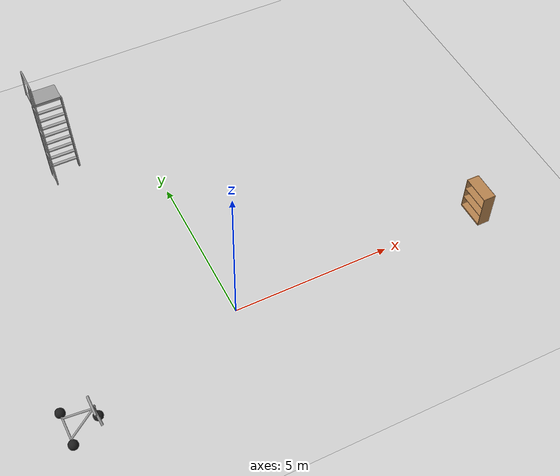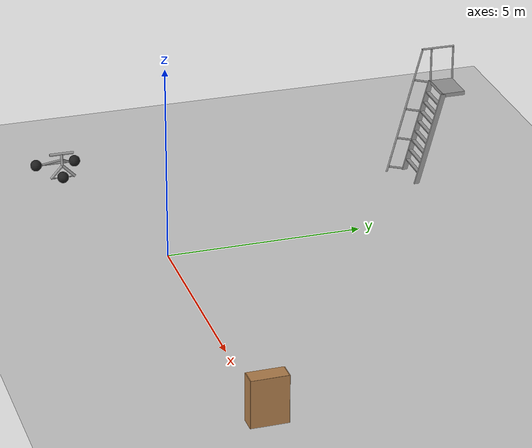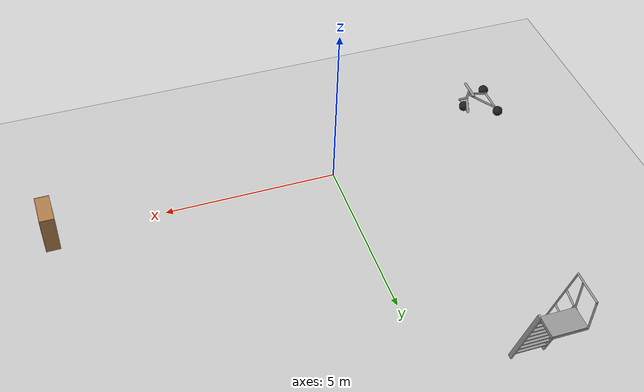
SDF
<sdf version="1.7">
 <world name="default">
  <light name="sun" type="directional">
   <pose>0 0 10 0 -0 0</pose>
   <diffuse>0.8 0.8 0.8 1</diffuse>
   <specular>0.2 0.2 0.2 1</specular>
   <attenuation>
    <range>1000</range>
    <constant>0.9</constant>
    <linear>0.01</linear>
    <quadratic>0.001</quadratic>
   </attenuation>
   <direction>-0.5 0.1 -0.9</direction>
   <spot><inner_angle>0</inner_angle><outer_angle>0</outer_angle><falloff>0</falloff></spot>
  </light>
  <model name="ground_plane">
   <static>1</static>
   <link name="link">
    <collision name="collision">
     <geometry><plane><normal>0 0 1</normal><size>100 100</size></plane></geometry>
     <surface>
      <contact><collide_bitmask>65535</collide_bitmask></contact>
      <friction><ode><mu>100</mu><mu2>50</mu2></ode></friction>
     </surface>
    </collision>
    <visual name="visual">
     <cast_shadows>0</cast_shadows>
     <geometry><plane><normal>0 0 1</normal><size>100 100</size></plane></geometry>
     <material>
      <script><uri>file://media/materials/scripts/gazebo.material</uri><name>Gazebo/Grey</name></script>
     </material>
    </visual>
   </link>
  </model>
  <gravity>0 0 -9.8</gravity>
  <magnetic_field>6e-06 2.3e-05 -4.2e-05</magnetic_field>
  <atmosphere type="adiabatic"/>
  <physics type="ode">
   <max_step_size>0.001</max_step_size>
   <real_time_factor>1</real_time_factor>
   <real_time_update_rate>1000</real_time_update_rate>
  </physics>
  <scene><ambient>0.4 0.4 0.4 1</ambient><background>0.7 0.7 0.7 1</background><shadows>1</shadows></scene>
  <audio><device>default</device></audio>
  <spherical_coordinates>
   <surface_model>EARTH_WGS84</surface_model>
   <latitude_deg>0</latitude_deg>
   <longitude_deg>0</longitude_deg>
   <elevation>0</elevation>
   <heading_deg>0</heading_deg>
  </spherical_coordinates>
  <model name="ladder_75deg_1rails">
   <static>1</static>
   <link name="step0">
    <pose>0 0.071453 0.266667 0 -0 0</pose>
    <inertial>
     <mass>9.75482</mass>
     <inertia>
      <ixx>0.00957124</ixx>
      <iyy>0.65963</iyy>
      <izz>0.666842</izz>
      <ixy>0</ixy>
      <ixz>0</ixz>
      <iyz>0</iyz>
     </inertia>
    </inertial>
    <collision name="collision"><geometry><box><size>0.9 0.1016 0.0381</size></box></geometry></collision>
    <visual name="visual">
     <geometry><box><size>0.9 0.1016 0.0381</size></box></geometry>
     <material>
      <script><uri>file://media/materials/scripts/gazebo.material</uri><name>Gazebo/Grey</name></script>
     </material>
    </visual>
   </link>
   <link name="step1">
    <pose>0 0.142906 0.533333 0 -0 0</pose>
    <inertial>
     <mass>9.75482</mass>
     <inertia>
      <ixx>0.00957124</ixx>
      <iyy>0.65963</iyy>
      <izz>0.666842</izz>
      <ixy>0</ixy>
      <ixz>0</ixz>
      <iyz>0</iyz>
     </inertia>
    </inertial>
    <collision name="collision"><geometry><box><size>0.9 0.1016 0.0381</size></box></geometry></collision>
    <visual name="visual">
     <geometry><box><size>0.9 0.1016 0.0381</size></box></geometry>
     <material>
      <script><uri>file://media/materials/scripts/gazebo.material</uri><name>Gazebo/Grey</name></script>
     </material>
    </visual>
   </link>
   <link name="step2">
    <pose>0 0.214359 0.8 0 -0 0</pose>
    <inertial>
     <mass>9.75482</mass>
     <inertia>
      <ixx>0.00957124</ixx>
      <iyy>0.65963</iyy>
      <izz>0.666842</izz>
      <ixy>0</ixy>
      <ixz>0</ixz>
      <iyz>0</iyz>
     </inertia>
    </inertial>
    <collision name="collision"><geometry><box><size>0.9 0.1016 0.0381</size></box></geometry></collision>
    <visual name="visual">
     <geometry><box><size>0.9 0.1016 0.0381</size></box></geometry>
     <material>
      <script><uri>file://media/materials/scripts/gazebo.material</uri><name>Gazebo/Grey</name></script>
     </material>
    </visual>
   </link>
   <link name="step3">
    <pose>0 0.285812 1.06667 0 -0 0</pose>
    <inertial>
     <mass>9.75482</mass>
     <inertia>
      <ixx>0.00957124</ixx>
      <iyy>0.65963</iyy>
      <izz>0.666842</izz>
      <ixy>0</ixy>
      <ixz>0</ixz>
      <iyz>0</iyz>
     </inertia>
    </inertial>
    <collision name="collision"><geometry><box><size>0.9 0.1016 0.0381</size></box></geometry></collision>
    <visual name="visual">
     <geometry><box><size>0.9 0.1016 0.0381</size></box></geometry>
     <material>
      <script><uri>file://media/materials/scripts/gazebo.material</uri><name>Gazebo/Grey</name></script>
     </material>
    </visual>
   </link>
   <link name="step4">
    <pose>0 0.357266 1.33333 0 -0 0</pose>
    <inertial>
     <mass>9.75482</mass>
     <inertia>
      <ixx>0.00957124</ixx>
      <iyy>0.65963</iyy>
      <izz>0.666842</izz>
      <ixy>0</ixy>
      <ixz>0</ixz>
      <iyz>0</iyz>
     </inertia>
    </inertial>
    <collision name="collision"><geometry><box><size>0.9 0.1016 0.0381</size></box></geometry></collision>
    <visual name="visual">
     <geometry><box><size>0.9 0.1016 0.0381</size></box></geometry>
     <material>
      <script><uri>file://media/materials/scripts/gazebo.material</uri><name>Gazebo/Grey</name></script>
     </material>
    </visual>
   </link>
   <link name="step5">
    <pose>0 0.428719 1.6 0 -0 0</pose>
    <inertial>
     <mass>9.75482</mass>
     <inertia>
      <ixx>0.00957124</ixx>
      <iyy>0.65963</iyy>
      <izz>0.666842</izz>
      <ixy>0</ixy>
      <ixz>0</ixz>
      <iyz>0</iyz>
     </inertia>
    </inertial>
    <collision name="collision"><geometry><box><size>0.9 0.1016 0.0381</size></box></geometry></collision>
    <visual name="visual">
     <geometry><box><size>0.9 0.1016 0.0381</size></box></geometry>
     <material>
      <script><uri>file://media/materials/scripts/gazebo.material</uri><name>Gazebo/Grey</name></script>
     </material>
    </visual>
   </link>
   <link name="step6">
    <pose>0 0.500172 1.86667 0 -0 0</pose>
    <inertial>
     <mass>9.75482</mass>
     <inertia>
      <ixx>0.00957124</ixx>
      <iyy>0.65963</iyy>
      <izz>0.666842</izz>
      <ixy>0</ixy>
      <ixz>0</ixz>
      <iyz>0</iyz>
     </inertia>
    </inertial>
    <collision name="collision"><geometry><box><size>0.9 0.1016 0.0381</size></box></geometry></collision>
    <visual name="visual">
     <geometry><box><size>0.9 0.1016 0.0381</size></box></geometry>
     <material>
      <script><uri>file://media/materials/scripts/gazebo.material</uri><name>Gazebo/Grey</name></script>
     </material>
    </visual>
   </link>
   <link name="step7">
    <pose>0 0.571625 2.13333 0 -0 0</pose>
    <inertial>
     <mass>9.75482</mass>
     <inertia>
      <ixx>0.00957124</ixx>
      <iyy>0.65963</iyy>
      <izz>0.666842</izz>
      <ixy>0</ixy>
      <ixz>0</ixz>
      <iyz>0</iyz>
     </inertia>
    </inertial>
    <collision name="collision"><geometry><box><size>0.9 0.1016 0.0381</size></box></geometry></collision>
    <visual name="visual">
     <geometry><box><size>0.9 0.1016 0.0381</size></box></geometry>
     <material>
      <script><uri>file://media/materials/scripts/gazebo.material</uri><name>Gazebo/Grey</name></script>
     </material>
    </visual>
   </link>
   <link name="landing">
    <pose>0 0.943078 2.4 0 -0 0</pose>
    <inertial>
     <mass>57.6072</mass>
     <inertia><ixx>1.73518</ixx><iyy>3.89545</iyy><izz>5.6167</izz><ixy>0</ixy><ixz>0</ixz><iyz>0</iyz></inertia>
    </inertial>
    <collision name="collision"><geometry><box><size>0.9 0.6 0.1016</size></box></geometry></collision>
    <visual name="visual">
     <geometry><box><size>0.9 0.6 0.1016</size></box></geometry>
     <material>
      <script><uri>file://media/materials/scripts/gazebo.material</uri><name>Gazebo/Grey</name></script>
     </material>
    </visual>
   </link>
   <link name="left_side_wall">
    <pose>-0.45 0.321539 1.2 1.309 -0 0</pose>
    <collision name="collision"><geometry><box><size>0.0508 2.56466 0.13</size></box></geometry></collision>
    <visual name="visual">
     <geometry><box><size>0.0508 2.56466 0.13</size></box></geometry>
     <material>
      <script><uri>file://media/materials/scripts/gazebo.material</uri><name>Gazebo/Grey</name></script>
     </material>
    </visual>
   </link>
   <link name="right_side_wall">
    <pose>0.45 0.321539 1.2 1.309 -0 0</pose>
    <collision name="collision"><geometry><box><size>0.0508 2.56466 0.13</size></box></geometry></collision>
    <visual name="visual">
     <geometry><box><size>0.0508 2.56466 0.13</size></box></geometry>
     <material>
      <script><uri>file://media/materials/scripts/gazebo.material</uri><name>Gazebo/Grey</name></script>
     </material>
    </visual>
   </link>
   <link name="left_railing_long">
    <pose>-0.45 -0.053461 1.66651 -0.261799 0 0</pose>
    <collision name="collision">
     <geometry><cylinder><radius>0.02413</radius><length>3.51529</length></cylinder></geometry>
    </collision>
    <visual name="visual">
     <geometry><cylinder><radius>0.02413</radius><length>3.51529</length></cylinder></geometry>
     <material>
      <script><uri>file://media/materials/scripts/gazebo.material</uri><name>Gazebo/Grey</name></script>
     </material>
    </visual>
   </link>
   <link name="left_railing_upright0">
    <pose>-0.45 -0.210089 0.056293 1.309 -0 0</pose>
    <collision name="collision">
     <geometry><cylinder><radius>0.02413</radius><length>0.482963</length></cylinder></geometry>
    </collision>
    <visual name="visual">
     <geometry><cylinder><radius>0.02413</radius><length>0.482963</length></cylinder></geometry>
     <material>
      <script><uri>file://media/materials/scripts/gazebo.material</uri><name>Gazebo/Grey</name></script>
     </material>
    </visual>
   </link>
   <link name="left_railing_upright1">
    <pose>-0.45 0.00427 0.856293 1.309 -0 0</pose>
    <collision name="collision">
     <geometry><cylinder><radius>0.02413</radius><length>0.482963</length></cylinder></geometry>
    </collision>
    <visual name="visual">
     <geometry><cylinder><radius>0.02413</radius><length>0.482963</length></cylinder></geometry>
     <material>
      <script><uri>file://media/materials/scripts/gazebo.material</uri><name>Gazebo/Grey</name></script>
     </material>
    </visual>
   </link>
   <link name="left_railing_upright2">
    <pose>-0.45 0.21863 1.65629 1.309 -0 0</pose>
    <collision name="collision">
     <geometry><cylinder><radius>0.02413</radius><length>0.482963</length></cylinder></geometry>
    </collision>
    <visual name="visual">
     <geometry><cylinder><radius>0.02413</radius><length>0.482963</length></cylinder></geometry>
     <material>
      <script><uri>file://media/materials/scripts/gazebo.material</uri><name>Gazebo/Grey</name></script>
     </material>
    </visual>
   </link>
   <link name="left_railing_upright3">
    <pose>-0.45 0.432989 2.45629 1.309 -0 0</pose>
    <collision name="collision">
     <geometry><cylinder><radius>0.02413</radius><length>0.482963</length></cylinder></geometry>
    </collision>
    <visual name="visual">
     <geometry><cylinder><radius>0.02413</radius><length>0.482963</length></cylinder></geometry>
     <material>
      <script><uri>file://media/materials/scripts/gazebo.material</uri><name>Gazebo/Grey</name></script>
     </material>
    </visual>
   </link>
   <link name="left_railing_landing_top">
    <pose>-0.45 0.818078 3.35714 1.5708 -0 0</pose>
    <collision name="collision">
     <geometry><cylinder><radius>0.02413</radius><length>0.87413</length></cylinder></geometry>
    </collision>
    <visual name="visual">
     <geometry><cylinder><radius>0.02413</radius><length>0.87413</length></cylinder></geometry>
     <material>
      <script><uri>file://media/materials/scripts/gazebo.material</uri><name>Gazebo/Grey</name></script>
     </material>
    </visual>
   </link>
   <link name="left_railing_landing_upright_0">
    <pose>-0.45 0.643078 2.86651 0 -0 0</pose>
    <collision name="collision">
     <geometry><cylinder><radius>0.02413</radius><length>0.933013</length></cylinder></geometry>
    </collision>
    <visual name="visual">
     <geometry><cylinder><radius>0.02413</radius><length>0.933013</length></cylinder></geometry>
     <material>
      <script><uri>file://media/materials/scripts/gazebo.material</uri><name>Gazebo/Grey</name></script>
     </material>
    </visual>
   </link>
   <link name="left_railing_landing_upright_1">
    <pose>-0.45 1.24308 2.86651 0 -0 0</pose>
    <collision name="collision">
     <geometry><cylinder><radius>0.02413</radius><length>0.933013</length></cylinder></geometry>
    </collision>
    <visual name="visual">
     <geometry><cylinder><radius>0.02413</radius><length>0.933013</length></cylinder></geometry>
     <material>
      <script><uri>file://media/materials/scripts/gazebo.material</uri><name>Gazebo/Grey</name></script>
     </material>
    </visual>
   </link>
   <pose>-2.53944 7.33102 0 0 -0 0</pose>
  </model>
  <model name="bookshelf">
   <static>1</static>
   <link name="link">
    <inertial><mass>1</mass></inertial>
    <collision name="back">
     <pose>0 0.005 0.6 0 -0 0</pose>
     <geometry><box><size>0.9 0.01 1.2</size></box></geometry>
    </collision>
    <visual name="visual1">
     <pose>0 0.005 0.6 0 -0 0</pose>
     <geometry><box><size>0.9 0.01 1.2</size></box></geometry>
     <material>
      <script><uri>file://media/materials/scripts/gazebo.material</uri><name>Gazebo/Wood</name></script>
     </material>
    </visual>
    <collision name="left_side">
     <pose>0.45 -0.195 0.6 0 -0 0</pose>
     <geometry><box><size>0.02 0.4 1.2</size></box></geometry>
    </collision>
    <visual name="visual2">
     <pose>0.45 -0.195 0.6 0 -0 0</pose>
     <geometry><box><size>0.02 0.4 1.2</size></box></geometry>
     <material>
      <script><uri>file://media/materials/scripts/gazebo.material</uri><name>Gazebo/Wood</name></script>
     </material>
    </visual>
    <collision name="right_side">
     <pose>-0.45 -0.195 0.6 0 -0 0</pose>
     <geometry><box><size>0.02 0.4 1.2</size></box></geometry>
    </collision>
    <visual name="visual3">
     <pose>-0.45 -0.195 0.6 0 -0 0</pose>
     <geometry><box><size>0.02 0.4 1.2</size></box></geometry>
     <material>
      <script><uri>file://media/materials/scripts/gazebo.material</uri><name>Gazebo/Wood</name></script>
     </material>
    </visual>
    <collision name="bottom">
     <pose>0 -0.195 0.03 0 -0 0</pose>
     <geometry><box><size>0.88 0.4 0.06</size></box></geometry>
    </collision>
    <visual name="visual4">
     <pose>0 -0.195 0.03 0 -0 0</pose>
     <geometry><box><size>0.88 0.4 0.06</size></box></geometry>
     <material>
      <script><uri>file://media/materials/scripts/gazebo.material</uri><name>Gazebo/Wood</name></script>
     </material>
    </visual>
    <collision name="top">
     <pose>0 -0.195 1.19 0 -0 0</pose>
     <geometry><box><size>0.88 0.4 0.02</size></box></geometry>
    </collision>
    <visual name="visual5">
     <pose>0 -0.195 1.19 0 -0 0</pose>
     <geometry><box><size>0.88 0.4 0.02</size></box></geometry>
     <material>
      <script><uri>file://media/materials/scripts/gazebo.material</uri><name>Gazebo/Wood</name></script>
     </material>
    </visual>
    <collision name="low_shelf">
     <pose>0 -0.195 0.43 0 -0 0</pose>
     <geometry><box><size>0.88 0.4 0.02</size></box></geometry>
    </collision>
    <visual name="visual6">
     <pose>0 -0.195 0.43 0 -0 0</pose>
     <geometry><box><size>0.88 0.4 0.02</size></box></geometry>
     <material>
      <script><uri>file://media/materials/scripts/gazebo.material</uri><name>Gazebo/Wood</name></script>
     </material>
    </visual>
    <collision name="high_shelf">
     <pose>0 -0.195 0.8 0 -0 0</pose>
     <geometry><box><size>0.88 0.4 0.02</size></box></geometry>
    </collision>
    <visual name="visual7">
     <pose>0 -0.195 0.8 0 -0 0</pose>
     <geometry><box><size>0.88 0.4 0.02</size></box></geometry>
     <material>
      <script><uri>file://media/materials/scripts/gazebo.material</uri><name>Gazebo/Wood</name></script>
     </material>
    </visual>
   </link>
   <pose>8.4174 -0.009837 0 0 0 -1.56394</pose>
  </model>
  <model name="trisphere_cycle">
   <link name="frame">
    <pose>-0.408559 0 0.385023 0 -0.522021 0</pose>
    <inertial>
     <mass>10</mass>
     <inertia><ixx>0.228</ixx><iyy>0.743521</iyy><izz>0.965521</izz><ixy>0</ixy><ixz>0</ixz><iyz>0</iyz></inertia>
    </inertial>
    <collision name="axle_collision">
     <pose>-0.471335 0 0 1.5708 -0 0</pose>
     <geometry><cylinder><length>1.03923</length><radius>0.03</radius></cylinder></geometry>
    </collision>
    <visual name="axle_visual">
     <pose>-0.471335 0 0 1.5708 -0 0</pose>
     <geometry><cylinder><length>1.03923</length><radius>0.03</radius></cylinder></geometry>
     <material>
      <script><uri>file://media/materials/scripts/gazebo.material</uri><name>Gazebo/Grey</name></script>
     </material>
    </visual>
    <collision name="frame_left_collision">
     <pose>0 0.171552 0 -2.79253 1.57079 3.14159</pose>
     <geometry><cylinder><length>1.00317</length><radius>0.03</radius></cylinder></geometry>
    </collision>
    <visual name="frame_left_visual">
     <pose>0 0.171552 0 -2.79253 1.57079 3.14159</pose>
     <geometry><cylinder><length>1.00317</length><radius>0.03</radius></cylinder></geometry>
     <material>
      <script><uri>file://media/materials/scripts/gazebo.material</uri><name>Gazebo/Grey</name></script>
     </material>
    </visual>
    <collision name="frame_right_collision">
     <pose>0 -0.171552 0 2.79253 1.57079 -3.14159</pose>
     <geometry><cylinder><length>1.00317</length><radius>0.03</radius></cylinder></geometry>
    </collision>
    <visual name="frame_right_visual">
     <pose>0 -0.171552 0 2.79253 1.57079 -3.14159</pose>
     <geometry><cylinder><length>1.00317</length><radius>0.03</radius></cylinder></geometry>
     <material>
      <script><uri>file://media/materials/scripts/gazebo.material</uri><name>Gazebo/Grey</name></script>
     </material>
    </visual>
   </link>
   <link name="fork">
    <pose>0.041441 0 0.385023 0 -0.174533 0</pose>
    <inertial>
     <mass>3</mass>
     <inertia>
      <ixx>0.158203</ixx>
      <iyy>0.0583594</iyy>
      <izz>0.102656</izz>
      <ixy>0</ixy>
      <ixz>0</ixz>
      <iyz>0</iyz>
     </inertia>
    </inertial>
    <collision name="handlebars_collision">
     <pose>0 0 0.397748 1.5708 -0 0</pose>
     <geometry><cylinder><length>0.636396</length><radius>0.0375</radius></cylinder></geometry>
    </collision>
    <visual name="handlebars_visual">
     <pose>0 0 0.397748 1.5708 -0 0</pose>
     <geometry><cylinder><length>0.636396</length><radius>0.0375</radius></cylinder></geometry>
     <material>
      <script><uri>file://media/materials/scripts/gazebo.material</uri><name>Gazebo/Grey</name></script>
     </material>
    </visual>
    <collision name="headtube_collision">
     <pose>0 0 0.238649 0 -0 0</pose>
     <geometry><cylinder><length>0.318198</length><radius>0.0375</radius></cylinder></geometry>
    </collision>
    <visual name="headtube_visual">
     <pose>0 0 0.238649 0 -0 0</pose>
     <geometry><cylinder><length>0.318198</length><radius>0.0375</radius></cylinder></geometry>
     <material>
      <script><uri>file://media/materials/scripts/gazebo.material</uri><name>Gazebo/Grey</name></script>
     </material>
    </visual>
    <collision name="spindle_collision">
     <pose>0 0 -0.238649 1.5708 -0 0</pose>
     <geometry><cylinder><length>0.636396</length><radius>0.015</radius></cylinder></geometry>
    </collision>
    <visual name="spindle_visual">
     <pose>0 0 -0.238649 1.5708 -0 0</pose>
     <geometry><cylinder><length>0.636396</length><radius>0.015</radius></cylinder></geometry>
     <material>
      <script><uri>file://media/materials/scripts/gazebo.material</uri><name>Gazebo/Grey</name></script>
     </material>
    </visual>
    <collision name="fork_left_collision">
     <pose>0 0.159099 -0.07955 0.785398 -0 0</pose>
     <geometry><cylinder><length>0.45</length><radius>0.0375</radius></cylinder></geometry>
    </collision>
    <visual name="fork_left_visual">
     <pose>0 0.159099 -0.07955 0.785398 -0 0</pose>
     <geometry><cylinder><length>0.45</length><radius>0.0375</radius></cylinder></geometry>
     <material>
      <script><uri>file://media/materials/scripts/gazebo.material</uri><name>Gazebo/Grey</name></script>
     </material>
    </visual>
    <collision name="fork_right_collision">
     <pose>0 -0.159099 -0.07955 -0.785398 0 0</pose>
     <geometry><cylinder><length>0.45</length><radius>0.0375</radius></cylinder></geometry>
    </collision>
    <visual name="fork_right_visual">
     <pose>0 -0.159099 -0.07955 -0.785398 0 0</pose>
     <geometry><cylinder><length>0.45</length><radius>0.0375</radius></cylinder></geometry>
     <material>
      <script><uri>file://media/materials/scripts/gazebo.material</uri><name>Gazebo/Grey</name></script>
     </material>
    </visual>
   </link>
   <link name="wheel_front">
    <pose>0.082882 0 0.15 0 -0 0</pose>
    <inertial>
     <mass>0.5</mass>
     <inertia><ixx>0.0045</ixx><iyy>0.0045</iyy><izz>0.0045</izz><ixy>0</ixy><ixz>0</ixz><iyz>0</iyz></inertia>
    </inertial>
    <collision name="collision">
     <geometry><sphere><radius>0.15</radius></sphere></geometry>
     <surface><contact><ode><kp>1e+08</kp><kd>1</kd><min_depth>0.0005</min_depth></ode></contact></surface>
    </collision>
    <visual name="visual">
     <geometry><sphere><radius>0.15</radius></sphere></geometry>
     <material>
      <script><uri>file://media/materials/scripts/gazebo.material</uri><name>Gazebo/Black</name></script>
     </material>
    </visual>
   </link>
   <joint name="wheel_front_steer" type="revolute">
    <parent>frame</parent>
    <child>fork</child>
    <axis>
     <xyz>0 0 1</xyz>
     <limit><lower>-0.959931</lower><upper>0.959931</upper></limit>
     <dynamics><spring_reference>0</spring_reference><spring_stiffness>0</spring_stiffness></dynamics>
    </axis>
   </joint>
   <joint name="wheel_front_spin" type="revolute">
    <parent>fork</parent>
    <child>wheel_front</child>
    <axis>
     <xyz>0 1 0</xyz>
     <limit><lower>-1e+16</lower><upper>1e+16</upper></limit>
     <dynamics><spring_reference>0</spring_reference><spring_stiffness>0</spring_stiffness></dynamics>
    </axis>
   </joint>
   <link name="wheel_rear_left">
    <pose>-0.817118 0.519615 0.15 0 -0 0</pose>
    <inertial>
     <mass>0.5</mass>
     <inertia><ixx>0.0045</ixx><iyy>0.0045</iyy><izz>0.0045</izz><ixy>0</ixy><ixz>0</ixz><iyz>0</iyz></inertia>
    </inertial>
    <collision name="collision">
     <geometry><sphere><radius>0.15</radius></sphere></geometry>
     <surface><contact><ode><kp>1e+08</kp><kd>1</kd><min_depth>0.0005</min_depth></ode></contact></surface>
    </collision>
    <visual name="visual">
     <geometry><sphere><radius>0.15</radius></sphere></geometry>
     <material>
      <script><uri>file://media/materials/scripts/gazebo.material</uri><name>Gazebo/Black</name></script>
     </material>
    </visual>
   </link>
   <joint name="wheel_rear_left_spin" type="revolute">
    <parent>frame</parent>
    <child>wheel_rear_left</child>
    <axis>
     <xyz>0 1 0</xyz>
     <limit><lower>-1e+16</lower><upper>1e+16</upper></limit>
     <dynamics><spring_reference>0</spring_reference><spring_stiffness>0</spring_stiffness></dynamics>
    </axis>
   </joint>
   <link name="wheel_rear_right">
    <pose>-0.817118 -0.519615 0.15 0 -0 0</pose>
    <inertial>
     <mass>0.5</mass>
     <inertia><ixx>0.0045</ixx><iyy>0.0045</iyy><izz>0.0045</izz><ixy>0</ixy><ixz>0</ixz><iyz>0</iyz></inertia>
    </inertial>
    <collision name="collision">
     <geometry><sphere><radius>0.15</radius></sphere></geometry>
     <surface><contact><ode><kp>1e+08</kp><kd>1</kd><min_depth>0.0005</min_depth></ode></contact></surface>
    </collision>
    <visual name="visual">
     <geometry><sphere><radius>0.15</radius></sphere></geometry>
     <material>
      <script><uri>file://media/materials/scripts/gazebo.material</uri><name>Gazebo/Black</name></script>
     </material>
    </visual>
   </link>
   <joint name="wheel_rear_right_spin" type="revolute">
    <parent>frame</parent>
    <child>wheel_rear_right</child>
    <axis>
     <xyz>0 1 0</xyz>
     <limit><lower>-1e+16</lower><upper>1e+16</upper></limit>
     <dynamics><spring_reference>0</spring_reference><spring_stiffness>0</spring_stiffness></dynamics>
    </axis>
   </joint>
   <pose>-4.88352 -1.49629 -0.000501 -0 1e-06 -0.001657</pose>
  </model>
  <light name="user_point_light_1" type="point">
   <pose>0.474532 0.517626 1 0 -0 0</pose>
   <diffuse>0.5 0.5 0.5 1</diffuse>
   <specular>0.1 0.1 0.1 1</specular>
   <attenuation>
    <range>20</range>
    <constant>0.5</constant>
    <linear>0.01</linear>
    <quadratic>0.001</quadratic>
   </attenuation>
   <cast_shadows>0</cast_shadows>
   <direction>0 0 -1</direction>
   <spot><inner_angle>0</inner_angle><outer_angle>0</outer_angle><falloff>0</falloff></spot>
  </light>
 </world>
</sdf>
